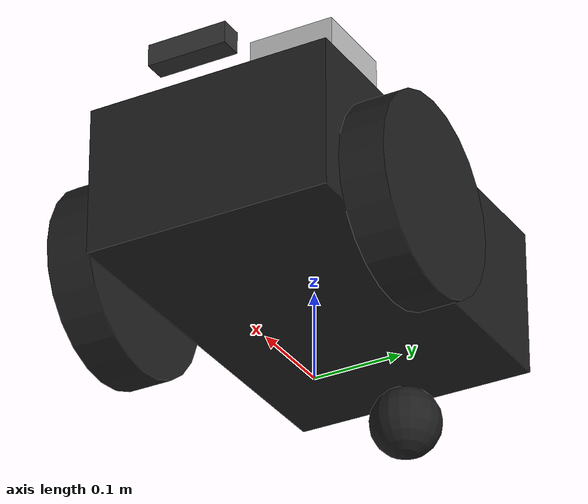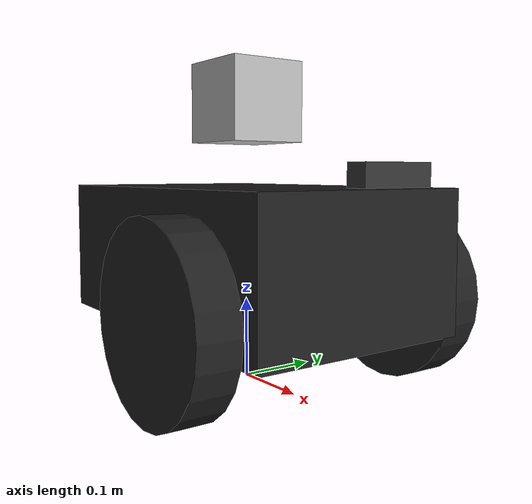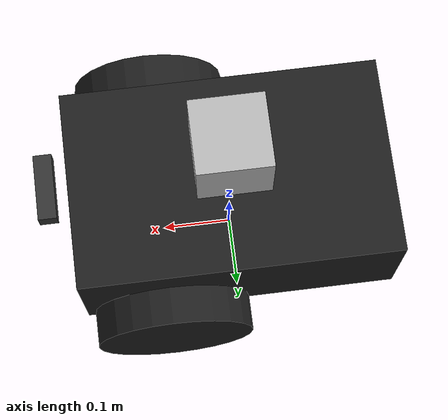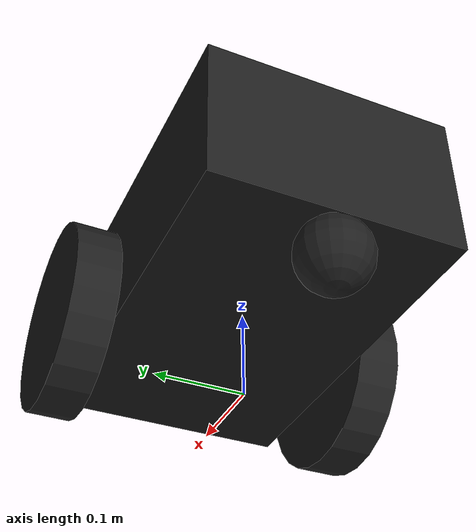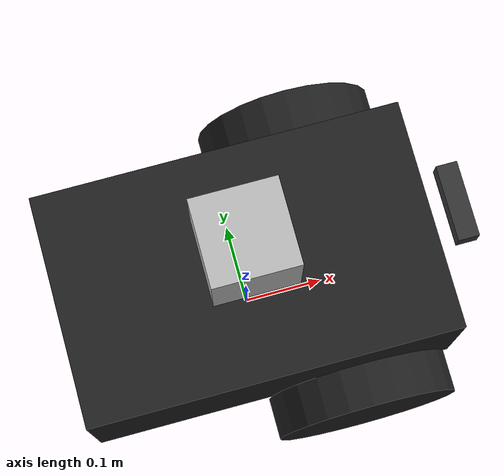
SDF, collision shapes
<?xml version="1.0" ?>
<sdf version="1.5">
  <model name="pioneer2dx" canonical_link='base_footprint'>
    <plugin
        filename="ignition-gazebo-joint-state-publisher-system"
        name="ignition::gazebo::systems::JointStatePublisher">
    </plugin>

    <link name='base_footprint'/>

    <joint name='footprint_to_base_joint' type='fixed'>
      <pose>0 0 0.01 0 0 0</pose>
      <parent>base_footprint</parent>
      <child>base_link</child>
      <use_parent_model_frame>true</use_parent_model_frame>
    </joint>

    <link name="base_link">
      <pose relative_to='base_footprint'>0 0 0.16 0 0 0</pose>
      <inertial>
        <mass>5.67</mass>
        <inertia>
          <ixx>0.07</ixx>
          <iyy>0.08</iyy>
          <izz>0.10</izz>
          <ixy>0</ixy>
          <ixz>0</ixz>
          <iyz>0</iyz>
        </inertia>
      </inertial>
      <collision name="collision">
        <geometry>
          <box>
            <size>0.445 0.277 0.17</size>
          </box>
        </geometry>
      </collision>
      <visual name="visual">
        <pose>0 0 0.04 0 0 0</pose>
        <geometry>
          <mesh>
            <uri>model://pioneer2dx/meshes/chassis.dae</uri>
          </mesh>
        </geometry>
      </visual>
      <collision name="caster_collision">
        <pose>-0.200 0 -0.12 0 0 0</pose>
        <geometry>
          <sphere>
            <radius>0.04</radius>
          </sphere>
        </geometry>
        <surface>
          <friction>
            <ode>
              <mu>0</mu>
              <mu2>0</mu2>
              <slip1>1.0</slip1>
              <slip2>1.0</slip2>
            </ode>
          </friction>
        </surface>
      </collision>
      <visual name="caster_visual">
        <pose>-0.200 0 -0.12 0 0 0</pose>
        <geometry>
          <sphere>
            <radius>0.04</radius>
          </sphere>
        </geometry>
        <material>
          <script>
            <uri>file://media/materials/scripts/gazebo.material</uri>
            <name>Gazebo/FlatBlack</name>
          </script>
        </material>
      </visual>

      <!-- IMU Sensor -->
      <sensor name="imu_sensor" type="imu">
        <always_on>true</always_on>
        <update_rate>200</update_rate>
        <topic>/imu/data</topic>
        <ignition_frame_id>base_link</ignition_frame_id>
        <imu>
          <angular_velocity>
            <x><noise type="gaussian"><mean>0</mean><stddev>0.009</stddev></noise></x>
            <y><noise type="gaussian"><mean>0</mean><stddev>0.009</stddev></noise></y>
            <z><noise type="gaussian"><mean>0</mean><stddev>0.009</stddev></noise></z>
          </angular_velocity>
          <linear_acceleration>
            <x><noise type="gaussian"><mean>0</mean><stddev>0.001</stddev></noise></x>
            <y><noise type="gaussian"><mean>0</mean><stddev>0.001</stddev></noise></y>
            <z><noise type="gaussian"><mean>0</mean><stddev>0.001</stddev></noise></z>
          </linear_acceleration>
        </imu>
      </sensor>
    </link>

    <link name="lidar_link">
      <pose relative_to='base_link'>0 0 0.19 0 0 0</pose>
      <inertial>
        <mass>0.1</mass>
        <inertia>
          <ixx>0.000166667</ixx>
          <iyy>0.000166667</iyy>
          <izz>0.000166667</izz>
        </inertia>
      </inertial>
      <collision name="collision">
        <geometry>
          <box>
            <size>0.1 0.1 0.1</size>
          </box>
        </geometry>
      </collision>
      <visual name="visual">
        <geometry>
          <box>
            <size>0.1 0.1 0.1</size>
          </box>
        </geometry>
      </visual>

      <sensor name='front_lidar' type='gpu_lidar'>
        <pose>0 0 0 0 0 0</pose>
        <topic>/scan</topic>
        <ignition_frame_id>lidar_link</ignition_frame_id>
        <update_rate>20</update_rate>
        <lidar>
          <scan>
            <horizontal>
              <samples>1800</samples> <!-- 1800 rays for 0.2 deg resolution -->
              <resolution>1</resolution>
              <min_angle>-3.1459</min_angle>
              <max_angle>3.1459</max_angle>
            </horizontal>
            <vertical>
              <samples>16</samples>
              <resolution>1</resolution>
              <min_angle>-0.261799</min_angle>
              <max_angle>0.261799</max_angle>
            </vertical>
          </scan>
          <range>
            <min>0.05</min>
            <max>100</max>
            <resolution>0.01</resolution>
          </range>
          <noise>
            <type>gaussian</type>
            <mean>0</mean>
            <stddev>0.01</stddev>
          </noise>
        </lidar>
        <visualize>true</visualize>
      </sensor>
    </link>

    <link name="right_wheel">
      <pose relative_to='base_link'>0.1 -0.17 -0.05 1.5707 0 0</pose>
      <inertial>
        <mass>1.5</mass>
        <inertia>
          <ixx>0.0051</ixx>
          <iyy>0.0051</iyy>
          <izz>0.0090</izz>
          <ixy>0</ixy>
          <ixz>0</ixz>
          <iyz>0</iyz>
        </inertia>
      </inertial>
      <collision name="collision">
        <geometry>
          <cylinder>
            <radius>0.11</radius>
            <length>0.05</length>
          </cylinder>
        </geometry>
        <surface>
          <friction>
            <ode>
              <mu>100000.0</mu>
              <mu2>100000.0</mu2>
              <slip1>0.0</slip1>
              <slip2>0.0</slip2>
            </ode>
          </friction>
        </surface>
      </collision>
      <visual name="visual">
        <geometry>
          <cylinder>
            <radius>0.11</radius>
            <length>0.05</length>
          </cylinder>
        </geometry>
        <material>
          <script>
            <uri>file://media/materials/scripts/gazebo.material</uri>
            <name>Gazebo/FlatBlack</name>
          </script>
        </material>
      </visual>
    </link>
    <link name="left_wheel">
      <pose relative_to='base_link'>0.1 0.17 -0.05 -1.5707 0 0</pose>
      <inertial>
        <mass>1.5</mass>
        <inertia>
          <ixx>0.0051</ixx>
          <iyy>0.0051</iyy>
          <izz>0.0090</izz>
          <ixy>0</ixy>
          <ixz>0</ixz>
          <iyz>0</iyz>
        </inertia>
      </inertial>
      <collision name="collision">
        <geometry>
          <cylinder>
            <radius>0.11</radius>
            <length>0.05</length>
          </cylinder>
        </geometry>
        <surface>
          <friction>
            <ode>
              <mu>100000.0</mu>
              <mu2>100000.0</mu2>
              <slip1>0.0</slip1>
              <slip2>0.0</slip2>
            </ode>
          </friction>
        </surface>
      </collision>
      <visual name="visual">
        <geometry>
          <cylinder>
            <radius>0.11</radius>
            <length>0.05</length>
          </cylinder>
        </geometry>
        <material>
          <script>
            <uri>file://media/materials/scripts/gazebo.material</uri>
            <name>Gazebo/FlatBlack</name>
          </script>
        </material>
      </visual>
    </link>

    <joint name='lidar_joint' type='fixed'>
      <parent>base_link</parent>
      <child>lidar_link</child>
    </joint>

    <!-- D435 Camera Link -->
    <link name="camera_link">
      <pose relative_to='base_link'>0.25 0 0.10 0 0 0</pose>
      <inertial>
        <mass>0.072</mass>
        <inertia>
          <ixx>0.00003881</ixx>
          <iyy>0.00000498</iyy>
          <izz>0.00003879</izz>
        </inertia>
      </inertial>
      <collision name="collision">
        <geometry>
          <box>
            <size>0.025 0.09 0.025</size>
          </box>
        </geometry>
      </collision>
      <visual name="visual">
        <geometry>
          <box>
            <size>0.025 0.09 0.025</size>
          </box>
        </geometry>
        <material>
          <ambient>0.1 0.1 0.1 1</ambient>
          <diffuse>0.2 0.2 0.2 1</diffuse>
        </material>
      </visual>

      <!-- RGB Camera -->
      <sensor name="color_camera" type="camera">
        <pose>0 0 0 0 0 0</pose>
        <topic>/camera/color/image_raw</topic>
        <camera_info_topic>/camera/color/camera_info</camera_info_topic>
        <ignition_frame_id>camera_color_optical_frame</ignition_frame_id>
        <update_rate>30</update_rate>
        <always_on>true</always_on>
        <visualize>true</visualize>
        <camera>
          <horizontal_fov>1.211</horizontal_fov>
          <image>
            <width>640</width>
            <height>480</height>
            <format>RGB_INT8</format>
          </image>
          <clip>
            <near>0.1</near>
            <far>100</far>
          </clip>
        </camera>
      </sensor>

      <!-- Depth Camera -->
      <sensor name="depth_camera" type="depth_camera">
        <pose>0 0 0 0 0 0</pose>
        <topic>/camera/depth/image_raw</topic>
        <camera_info_topic>/camera/depth/camera_info</camera_info_topic>
        <ignition_frame_id>camera_color_optical_frame</ignition_frame_id>
        <update_rate>30</update_rate>
        <always_on>true</always_on>
        <visualize>true</visualize>
        <camera>
          <horizontal_fov>1.211</horizontal_fov>
          <image>
            <width>640</width>
            <height>480</height>
            <format>R_FLOAT32</format>
          </image>
          <clip>
            <near>0.1</near>
            <far>100</far>
          </clip>
        </camera>
      </sensor>

      <!-- RGBD Camera for Point Cloud -->
      <sensor name="rgbd_camera" type="rgbd_camera">
        <pose>0 0 0 0 0 0</pose>
        <topic>/camera</topic>
        <ignition_frame_id>camera_link</ignition_frame_id>
        <update_rate>15</update_rate>
        <always_on>true</always_on>
        <visualize>true</visualize>
        <camera>
          <horizontal_fov>1.211</horizontal_fov>
          <image>
            <width>640</width>
            <height>480</height>
          </image>
          <clip>
            <near>0.1</near>
            <far>100</far>
          </clip>
        </camera>
      </sensor>
    </link>

    <joint name='camera_joint' type='fixed'>
      <parent>base_link</parent>
      <child>camera_link</child>
    </joint>

    <joint name='left_wheel_joint' type='revolute'>
      <pose relative_to='left_wheel'/>
      <parent>base_link</parent>
      <child>left_wheel</child>
      <use_parent_model_frame>true</use_parent_model_frame>
      <axis>
        <xyz expressed_in='__model__'>0 1 0</xyz>
        <limit>
          <lower>-1.79769e+308</lower>
          <upper>1.79769e+308</upper>
          <effort>10</effort>
          <velocity>10</velocity>
        </limit>
      </axis>
    </joint>

    <joint name='right_wheel_joint' type='revolute'>
      <pose relative_to='right_wheel'/>
      <parent>base_link</parent>
      <child>right_wheel</child>
      <use_parent_model_frame>true</use_parent_model_frame>
      <axis>
        <xyz expressed_in='__model__'>0 1 0</xyz>
        <limit>
          <lower>-1.79769e+308</lower>
          <upper>1.79769e+308</upper>
          <effort>10</effort>
          <velocity>10</velocity>
        </limit>
      </axis>
    </joint>

    <plugin filename="ignition-gazebo-diff-drive-system" name="ignition::gazebo::systems::DiffDrive">
      <topic>/cmd_vel</topic>
      <left_joint>left_wheel_joint</left_joint>
      <right_joint>right_wheel_joint</right_joint>
      <wheel_separation>0.34</wheel_separation>
      <wheel_radius>0.11</wheel_radius>
      <max_linear_acceleration>1.5</max_linear_acceleration>
      <min_linear_acceleration>-1.5</min_linear_acceleration>
      <max_angular_acceleration>1.6</max_angular_acceleration>
      <min_angular_acceleration>-1.6</min_angular_acceleration>
      <max_linear_velocity>0.4</max_linear_velocity>
      <min_linear_velocity>-0.4</min_linear_velocity>
      <max_angular_velocity>1</max_angular_velocity>
      <min_angular_velocity>-1</min_angular_velocity>
    </plugin>

    <!-- Moving Forward-->
    <plugin filename="libignition-gazebo-triggered-publisher-system.so" name="ignition::gazebo::systems::TriggeredPublisher">
      <input type="ignition.msgs.Int32" topic="/keyboard/keypress">
        <match field="data">16777235</match>
      </input>
      <output type="ignition.msgs.Twist" topic="/cmd_vel">
        linear: {x: 0.4}, angular: {z: 0.0}
      </output>
    </plugin>

    <!-- Moving Backward-->
    <plugin filename="libignition-gazebo-triggered-publisher-system.so" name="ignition::gazebo::systems::TriggeredPublisher">
      <input type="ignition.msgs.Int32" topic="/keyboard/keypress">
        <match field="data">16777237</match>
      </input>
      <output type="ignition.msgs.Twist" topic="/cmd_vel">
        linear: {x: -0.4}, angular: {z: 0.0}
      </output>
    </plugin>

    <!-- Moving Left-->
    <plugin filename="libignition-gazebo-triggered-publisher-system.so" name="ignition::gazebo::systems::TriggeredPublisher">
      <input type="ignition.msgs.Int32" topic="/keyboard/keypress">
        <match field="data">16777234</match>
      </input>
      <output type="ignition.msgs.Twist" topic="/cmd_vel">
        linear: {x: 0.0}, angular: {z: 1}
      </output>
    </plugin>

    <!-- Moving Right-->
    <plugin filename="libignition-gazebo-triggered-publisher-system.so" name="ignition::gazebo::systems::TriggeredPublisher">
      <input type="ignition.msgs.Int32" topic="/keyboard/keypress">
        <match field="data">16777236</match>
      </input>
      <output type="ignition.msgs.Twist" topic="/cmd_vel">
        linear: {x: 0.0}, angular: {z: -1}
      </output>
    </plugin>

    <!-- Stop Moving-->
    <plugin filename="libignition-gazebo-triggered-publisher-system.so" name="ignition::gazebo::systems::TriggeredPublisher">
      <input type="ignition.msgs.Int32" topic="/keyboard/keypress">
        <match field="data">83</match>        <!--83 is the key s-->
      </input>
      <output type="ignition.msgs.Twist" topic="/cmd_vel">
        linear: {x: 0.0}, angular: {z: 0.0}
      </output>
    </plugin>
  </model>
</sdf>
